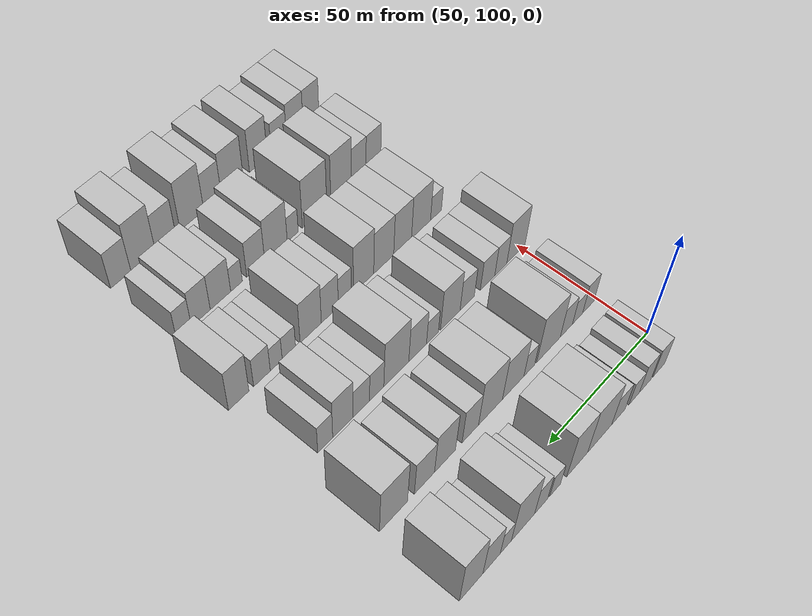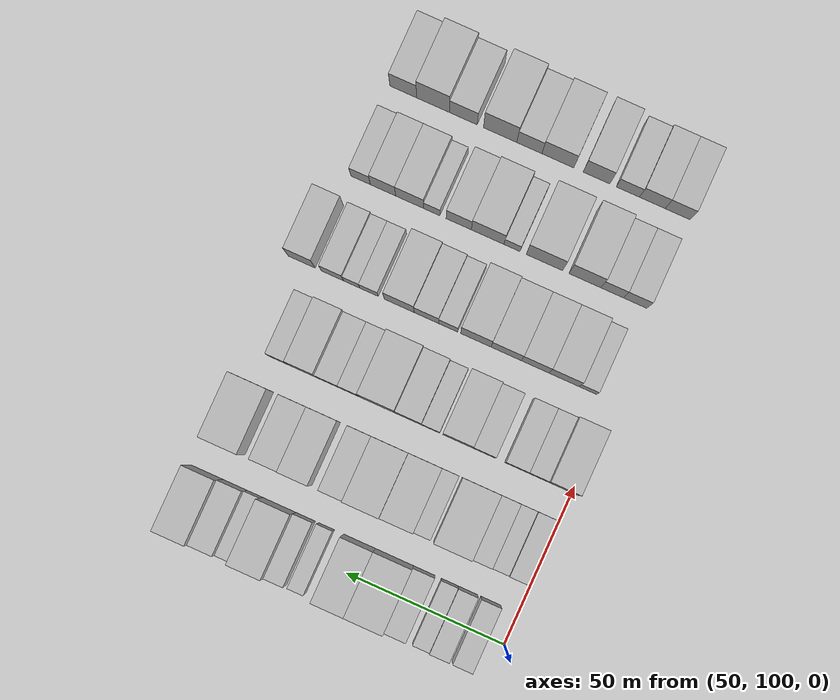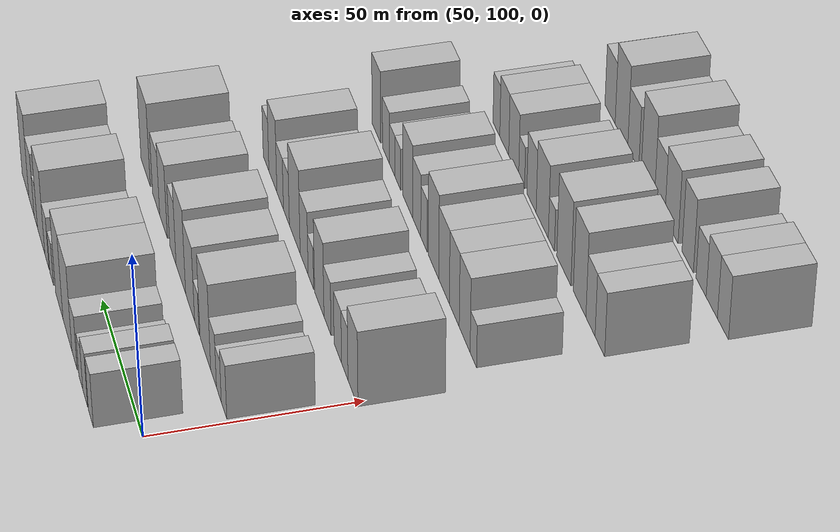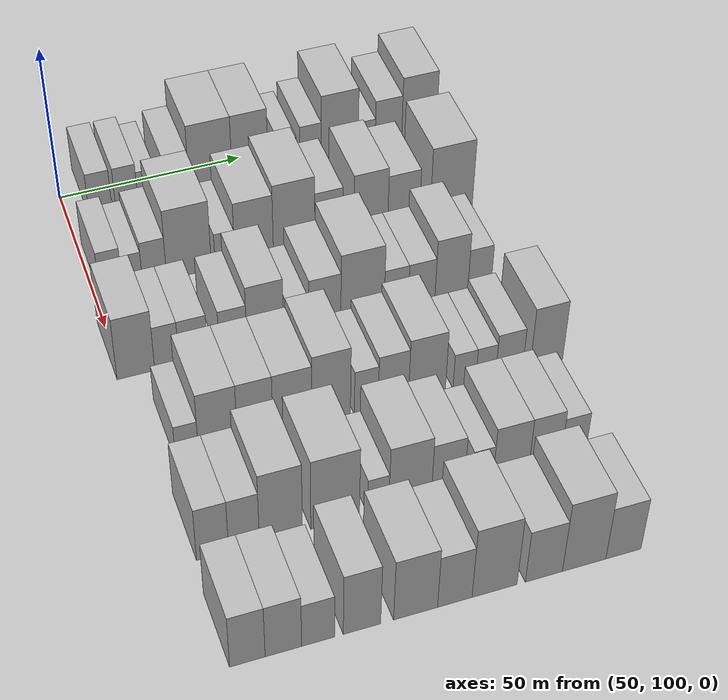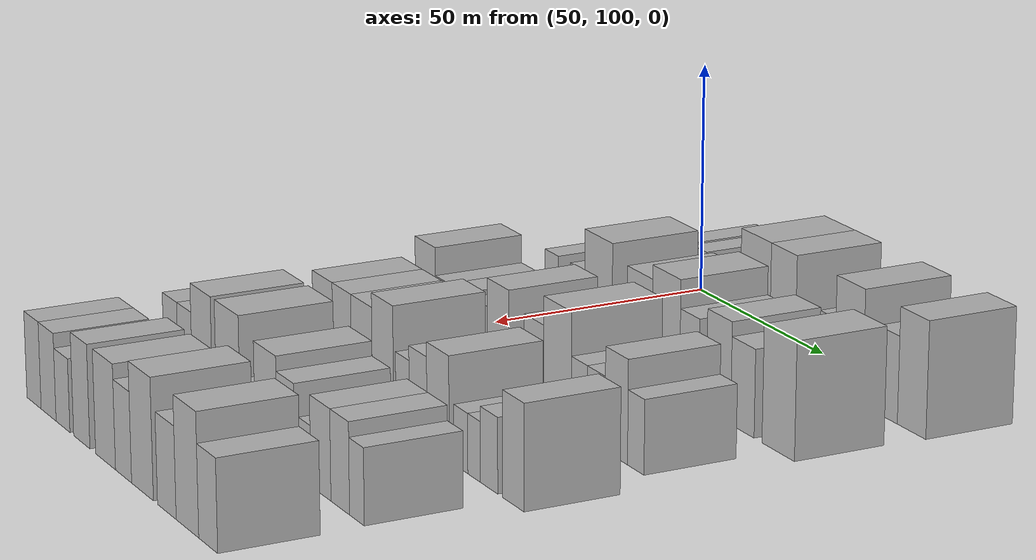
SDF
<sdf version="1.6">
 <world name="default">
  <model name="building_76">
   <static>1</static>
   <pose>50.0000 108.7788 0 0.000000 0.000000 0.000000</pose>
   <link name="link">
    <pose>0 0 7.50 0 0 0</pose>
    <collision name="collision"><geometry><box><size>20.0000 6.2623 15.0000</size></box></geometry></collision>
    <visual name="visual">
     <cast_shadows>0</cast_shadows>
     <geometry><box><size>20.0000 6.2623 15.0000</size></box></geometry>
     <material>
      <script>
       <uri>model://HANNAS_wall/materials/scripts</uri>
       <uri>model://HANNAS_wall/materials/textures</uri>
       <name>vrc/HANNAS_wall</name>
      </script>
     </material>
    </visual>
   </link>
  </model>
  <model name="building_77">
   <static>1</static>
   <pose>50.0000 115.9818 0 0.000000 0.000000 0.000000</pose>
   <link name="link">
    <pose>0 0 7.50 0 0 0</pose>
    <collision name="collision"><geometry><box><size>20.0000 6.1438 15.0000</size></box></geometry></collision>
    <visual name="visual">
     <cast_shadows>0</cast_shadows>
     <geometry><box><size>20.0000 6.1438 15.0000</size></box></geometry>
     <material>
      <script>
       <uri>model://HANNAS_wall/materials/scripts</uri>
       <uri>model://HANNAS_wall/materials/textures</uri>
       <name>vrc/HANNAS_wall</name>
      </script>
     </material>
    </visual>
   </link>
  </model>
  <model name="building_78">
   <static>1</static>
   <pose>50.0000 121.7191 0 0.000000 0.000000 0.000000</pose>
   <link name="link">
    <pose>0 0 6.00 0 0 0</pose>
    <collision name="collision"><geometry><box><size>20.0000 5.3306 12.0000</size></box></geometry></collision>
    <visual name="visual">
     <cast_shadows>0</cast_shadows>
     <geometry><box><size>20.0000 5.3306 12.0000</size></box></geometry>
     <material>
      <script>
       <uri>model://HANNAS_wall/materials/scripts</uri>
       <uri>model://HANNAS_wall/materials/textures</uri>
       <name>vrc/HANNAS_wall</name>
      </script>
     </material>
    </visual>
   </link>
  </model>
  <model name="building_79">
   <static>1</static>
   <pose>50.0000 129.8049 0 0.000000 0.000000 0.000000</pose>
   <link name="link">
    <pose>0 0 7.50 0 0 0</pose>
    <collision name="collision"><geometry><box><size>20.0000 6.8411 15.0000</size></box></geometry></collision>
    <visual name="visual">
     <cast_shadows>0</cast_shadows>
     <geometry><box><size>20.0000 6.8411 15.0000</size></box></geometry>
     <material>
      <script>
       <uri>model://HANNAS_wall/materials/scripts</uri>
       <uri>model://HANNAS_wall/materials/textures</uri>
       <name>vrc/HANNAS_wall</name>
      </script>
     </material>
    </visual>
   </link>
  </model>
  <model name="building_80">
   <static>1</static>
   <pose>50.0000 139.2177 0 0.000000 0.000000 0.000000</pose>
   <link name="link">
    <pose>0 0 12.00 0 0 0</pose>
    <collision name="collision"><geometry><box><size>20.0000 11.9846 24.0000</size></box></geometry></collision>
    <visual name="visual">
     <cast_shadows>0</cast_shadows>
     <geometry><box><size>20.0000 11.9846 24.0000</size></box></geometry>
     <material>
      <script>
       <uri>model://HANNAS_wall/materials/scripts</uri>
       <uri>model://HANNAS_wall/materials/textures</uri>
       <name>vrc/HANNAS_wall</name>
      </script>
     </material>
    </visual>
   </link>
  </model>
  <model name="building_81">
   <static>1</static>
   <pose>50.0000 150.2545 0 0.000000 0.000000 0.000000</pose>
   <link name="link">
    <pose>0 0 12.00 0 0 0</pose>
    <collision name="collision"><geometry><box><size>20.0000 10.0889 24.0000</size></box></geometry></collision>
    <visual name="visual">
     <cast_shadows>0</cast_shadows>
     <geometry><box><size>20.0000 10.0889 24.0000</size></box></geometry>
     <material>
      <script>
       <uri>model://HANNAS_wall/materials/scripts</uri>
       <uri>model://HANNAS_wall/materials/textures</uri>
       <name>vrc/HANNAS_wall</name>
      </script>
     </material>
    </visual>
   </link>
  </model>
  <model name="building_82">
   <static>1</static>
   <pose>50.0000 160.8277 0 0.000000 0.000000 0.000000</pose>
   <link name="link">
    <pose>0 0 6.00 0 0 0</pose>
    <collision name="collision"><geometry><box><size>20.0000 5.0575 12.0000</size></box></geometry></collision>
    <visual name="visual">
     <cast_shadows>0</cast_shadows>
     <geometry><box><size>20.0000 5.0575 12.0000</size></box></geometry>
     <material>
      <script>
       <uri>model://HANNAS_wall/materials/scripts</uri>
       <uri>model://HANNAS_wall/materials/textures</uri>
       <name>vrc/HANNAS_wall</name>
      </script>
     </material>
    </visual>
   </link>
  </model>
  <model name="building_83">
   <static>1</static>
   <pose>50.0000 167.3991 0 0.000000 0.000000 0.000000</pose>
   <link name="link">
    <pose>0 0 7.50 0 0 0</pose>
    <collision name="collision"><geometry><box><size>20.0000 6.0853 15.0000</size></box></geometry></collision>
    <visual name="visual">
     <cast_shadows>0</cast_shadows>
     <geometry><box><size>20.0000 6.0853 15.0000</size></box></geometry>
     <material>
      <script>
       <uri>model://HANNAS_wall/materials/scripts</uri>
       <uri>model://HANNAS_wall/materials/textures</uri>
       <name>vrc/HANNAS_wall</name>
      </script>
     </material>
    </visual>
   </link>
  </model>
  <model name="building_84">
   <static>1</static>
   <pose>50.0000 175.7296 0 0.000000 0.000000 0.000000</pose>
   <link name="link">
    <pose>0 0 12.00 0 0 0</pose>
    <collision name="collision"><geometry><box><size>20.0000 10.5756 24.0000</size></box></geometry></collision>
    <visual name="visual">
     <cast_shadows>0</cast_shadows>
     <geometry><box><size>20.0000 10.5756 24.0000</size></box></geometry>
     <material>
      <script>
       <uri>model://HANNAS_wall/materials/scripts</uri>
       <uri>model://HANNAS_wall/materials/textures</uri>
       <name>vrc/HANNAS_wall</name>
      </script>
     </material>
    </visual>
   </link>
  </model>
  <model name="building_85">
   <static>1</static>
   <pose>50.0000 183.4808 0 0.000000 0.000000 0.000000</pose>
   <link name="link">
    <pose>0 0 6.00 0 0 0</pose>
    <collision name="collision"><geometry><box><size>20.0000 4.9268 12.0000</size></box></geometry></collision>
    <visual name="visual">
     <cast_shadows>0</cast_shadows>
     <geometry><box><size>20.0000 4.9268 12.0000</size></box></geometry>
     <material>
      <script>
       <uri>model://HANNAS_wall/materials/scripts</uri>
       <uri>model://HANNAS_wall/materials/textures</uri>
       <name>vrc/HANNAS_wall</name>
      </script>
     </material>
    </visual>
   </link>
  </model>
  <model name="building_86">
   <static>1</static>
   <pose>50.0000 189.7976 0 0.000000 0.000000 0.000000</pose>
   <link name="link">
    <pose>0 0 9.00 0 0 0</pose>
    <collision name="collision"><geometry><box><size>20.0000 7.7068 18.0000</size></box></geometry></collision>
    <visual name="visual">
     <cast_shadows>0</cast_shadows>
     <geometry><box><size>20.0000 7.7068 18.0000</size></box></geometry>
     <material>
      <script>
       <uri>model://HANNAS_wall/materials/scripts</uri>
       <uri>model://HANNAS_wall/materials/textures</uri>
       <name>vrc/HANNAS_wall</name>
      </script>
     </material>
    </visual>
   </link>
  </model>
  <model name="building_87">
   <static>1</static>
   <pose>50.0000 198.7217 0 0.000000 0.000000 0.000000</pose>
   <link name="link">
    <pose>0 0 12.00 0 0 0</pose>
    <collision name="collision"><geometry><box><size>20.0000 10.1415 24.0000</size></box></geometry></collision>
    <visual name="visual">
     <cast_shadows>0</cast_shadows>
     <geometry><box><size>20.0000 10.1415 24.0000</size></box></geometry>
     <material>
      <script>
       <uri>model://HANNAS_wall/materials/scripts</uri>
       <uri>model://HANNAS_wall/materials/textures</uri>
       <name>vrc/HANNAS_wall</name>
      </script>
     </material>
    </visual>
   </link>
  </model>
  <model name="building_190">
   <static>1</static>
   <pose>79.0000 104.3018 0 0.000000 0.000000 0.000000</pose>
   <link name="link">
    <pose>0 0 7.50 0 0 0</pose>
    <collision name="collision"><geometry><box><size>20.0000 6.0073 15.0000</size></box></geometry></collision>
    <visual name="visual">
     <cast_shadows>0</cast_shadows>
     <geometry><box><size>20.0000 6.0073 15.0000</size></box></geometry>
     <material>
      <script>
       <uri>model://HANNAS_wall/materials/scripts</uri>
       <uri>model://HANNAS_wall/materials/textures</uri>
       <name>vrc/HANNAS_wall</name>
      </script>
     </material>
    </visual>
   </link>
  </model>
  <model name="building_191">
   <static>1</static>
   <pose>79.0000 109.9408 0 0.000000 0.000000 0.000000</pose>
   <link name="link">
    <pose>0 0 6.00 0 0 0</pose>
    <collision name="collision"><geometry><box><size>20.0000 5.2708 12.0000</size></box></geometry></collision>
    <visual name="visual">
     <cast_shadows>0</cast_shadows>
     <geometry><box><size>20.0000 5.2708 12.0000</size></box></geometry>
     <material>
      <script>
       <uri>model://HANNAS_wall/materials/scripts</uri>
       <uri>model://HANNAS_wall/materials/textures</uri>
       <name>vrc/HANNAS_wall</name>
      </script>
     </material>
    </visual>
   </link>
  </model>
  <model name="building_192">
   <static>1</static>
   <pose>79.0000 115.7569 0 0.000000 0.000000 0.000000</pose>
   <link name="link">
    <pose>0 0 7.50 0 0 0</pose>
    <collision name="collision"><geometry><box><size>20.0000 6.3614 15.0000</size></box></geometry></collision>
    <visual name="visual">
     <cast_shadows>0</cast_shadows>
     <geometry><box><size>20.0000 6.3614 15.0000</size></box></geometry>
     <material>
      <script>
       <uri>model://HANNAS_wall/materials/scripts</uri>
       <uri>model://HANNAS_wall/materials/textures</uri>
       <name>vrc/HANNAS_wall</name>
      </script>
     </material>
    </visual>
   </link>
  </model>
  <model name="building_193">
   <static>1</static>
   <pose>79.0000 124.8887 0 0.000000 0.000000 0.000000</pose>
   <link name="link">
    <pose>0 0 12.00 0 0 0</pose>
    <collision name="collision"><geometry><box><size>20.0000 11.9023 24.0000</size></box></geometry></collision>
    <visual name="visual">
     <cast_shadows>0</cast_shadows>
     <geometry><box><size>20.0000 11.9023 24.0000</size></box></geometry>
     <material>
      <script>
       <uri>model://HANNAS_wall/materials/scripts</uri>
       <uri>model://HANNAS_wall/materials/textures</uri>
       <name>vrc/HANNAS_wall</name>
      </script>
     </material>
    </visual>
   </link>
  </model>
  <model name="building_194">
   <static>1</static>
   <pose>79.0000 134.4914 0 0.000000 0.000000 0.000000</pose>
   <link name="link">
    <pose>0 0 6.00 0 0 0</pose>
    <collision name="collision"><geometry><box><size>20.0000 5.3030 12.0000</size></box></geometry></collision>
    <visual name="visual">
     <cast_shadows>0</cast_shadows>
     <geometry><box><size>20.0000 5.3030 12.0000</size></box></geometry>
     <material>
      <script>
       <uri>model://HANNAS_wall/materials/scripts</uri>
       <uri>model://HANNAS_wall/materials/textures</uri>
       <name>vrc/HANNAS_wall</name>
      </script>
     </material>
    </visual>
   </link>
  </model>
  <model name="building_195">
   <static>1</static>
   <pose>79.0000 142.3556 0 0.000000 0.000000 0.000000</pose>
   <link name="link">
    <pose>0 0 10.50 0 0 0</pose>
    <collision name="collision"><geometry><box><size>20.0000 10.4254 21.0000</size></box></geometry></collision>
    <visual name="visual">
     <cast_shadows>0</cast_shadows>
     <geometry><box><size>20.0000 10.4254 21.0000</size></box></geometry>
     <material>
      <script>
       <uri>model://HANNAS_wall/materials/scripts</uri>
       <uri>model://HANNAS_wall/materials/textures</uri>
       <name>vrc/HANNAS_wall</name>
      </script>
     </material>
    </visual>
   </link>
  </model>
  <model name="building_196">
   <static>1</static>
   <pose>79.0000 153.2470 0 0.000000 0.000000 0.000000</pose>
   <link name="link">
    <pose>0 0 12.00 0 0 0</pose>
    <collision name="collision"><geometry><box><size>20.0000 11.3574 24.0000</size></box></geometry></collision>
    <visual name="visual">
     <cast_shadows>0</cast_shadows>
     <geometry><box><size>20.0000 11.3574 24.0000</size></box></geometry>
     <material>
      <script>
       <uri>model://HANNAS_wall/materials/scripts</uri>
       <uri>model://HANNAS_wall/materials/textures</uri>
       <name>vrc/HANNAS_wall</name>
      </script>
     </material>
    </visual>
   </link>
  </model>
  <model name="building_197">
   <static>1</static>
   <pose>79.0000 162.7533 0 0.000000 0.000000 0.000000</pose>
   <link name="link">
    <pose>0 0 9.00 0 0 0</pose>
    <collision name="collision"><geometry><box><size>20.0000 7.6553 18.0000</size></box></geometry></collision>
    <visual name="visual">
     <cast_shadows>0</cast_shadows>
     <geometry><box><size>20.0000 7.6553 18.0000</size></box></geometry>
     <material>
      <script>
       <uri>model://HANNAS_wall/materials/scripts</uri>
       <uri>model://HANNAS_wall/materials/textures</uri>
       <name>vrc/HANNAS_wall</name>
      </script>
     </material>
    </visual>
   </link>
  </model>
  <model name="building_198">
   <static>1</static>
   <pose>79.0000 174.3185 0 0.000000 0.000000 0.000000</pose>
   <link name="link">
    <pose>0 0 10.50 0 0 0</pose>
    <collision name="collision"><geometry><box><size>20.0000 9.4750 21.0000</size></box></geometry></collision>
    <visual name="visual">
     <cast_shadows>0</cast_shadows>
     <geometry><box><size>20.0000 9.4750 21.0000</size></box></geometry>
     <material>
      <script>
       <uri>model://HANNAS_wall/materials/scripts</uri>
       <uri>model://HANNAS_wall/materials/textures</uri>
       <name>vrc/HANNAS_wall</name>
      </script>
     </material>
    </visual>
   </link>
  </model>
  <model name="building_199">
   <static>1</static>
   <pose>79.0000 183.5100 0 0.000000 0.000000 0.000000</pose>
   <link name="link">
    <pose>0 0 9.00 0 0 0</pose>
    <collision name="collision"><geometry><box><size>20.0000 8.9079 18.0000</size></box></geometry></collision>
    <visual name="visual">
     <cast_shadows>0</cast_shadows>
     <geometry><box><size>20.0000 8.9079 18.0000</size></box></geometry>
     <material>
      <script>
       <uri>model://HANNAS_wall/materials/scripts</uri>
       <uri>model://HANNAS_wall/materials/textures</uri>
       <name>vrc/HANNAS_wall</name>
      </script>
     </material>
    </visual>
   </link>
  </model>
  <model name="building_200">
   <static>1</static>
   <pose>79.0000 196.9614 0 0.000000 0.000000 0.000000</pose>
   <link name="link">
    <pose>0 0 12.00 0 0 0</pose>
    <collision name="collision"><geometry><box><size>20.0000 11.9950 24.0000</size></box></geometry></collision>
    <visual name="visual">
     <cast_shadows>0</cast_shadows>
     <geometry><box><size>20.0000 11.9950 24.0000</size></box></geometry>
     <material>
      <script>
       <uri>model://HANNAS_wall/materials/scripts</uri>
       <uri>model://HANNAS_wall/materials/textures</uri>
       <name>vrc/HANNAS_wall</name>
      </script>
     </material>
    </visual>
   </link>
  </model>
  <model name="building_300">
   <static>1</static>
   <pose>108.0000 103.1488 0 0.000000 0.000000 0.000000</pose>
   <link name="link">
    <pose>0 0 10.50 0 0 0</pose>
    <collision name="collision"><geometry><box><size>20.0000 9.5024 21.0000</size></box></geometry></collision>
    <visual name="visual">
     <cast_shadows>0</cast_shadows>
     <geometry><box><size>20.0000 9.5024 21.0000</size></box></geometry>
     <material>
      <script>
       <uri>model://HANNAS_wall/materials/scripts</uri>
       <uri>model://HANNAS_wall/materials/textures</uri>
       <name>vrc/HANNAS_wall</name>
      </script>
     </material>
    </visual>
   </link>
  </model>
  <model name="building_301">
   <static>1</static>
   <pose>108.0000 110.9851 0 0.000000 0.000000 0.000000</pose>
   <link name="link">
    <pose>0 0 7.50 0 0 0</pose>
    <collision name="collision"><geometry><box><size>20.0000 6.1701 15.0000</size></box></geometry></collision>
    <visual name="visual">
     <cast_shadows>0</cast_shadows>
     <geometry><box><size>20.0000 6.1701 15.0000</size></box></geometry>
     <material>
      <script>
       <uri>model://HANNAS_wall/materials/scripts</uri>
       <uri>model://HANNAS_wall/materials/textures</uri>
       <name>vrc/HANNAS_wall</name>
      </script>
     </material>
    </visual>
   </link>
  </model>
  <model name="building_302">
   <static>1</static>
   <pose>108.0000 117.7312 0 0.000000 0.000000 0.000000</pose>
   <link name="link">
    <pose>0 0 7.50 0 0 0</pose>
    <collision name="collision"><geometry><box><size>20.0000 7.3222 15.0000</size></box></geometry></collision>
    <visual name="visual">
     <cast_shadows>0</cast_shadows>
     <geometry><box><size>20.0000 7.3222 15.0000</size></box></geometry>
     <material>
      <script>
       <uri>model://HANNAS_wall/materials/scripts</uri>
       <uri>model://HANNAS_wall/materials/textures</uri>
       <name>vrc/HANNAS_wall</name>
      </script>
     </material>
    </visual>
   </link>
  </model>
  <model name="building_303">
   <static>1</static>
   <pose>108.0000 127.9344 0 0.000000 0.000000 0.000000</pose>
   <link name="link">
    <pose>0 0 7.50 0 0 0</pose>
    <collision name="collision"><geometry><box><size>20.0000 7.0842 15.0000</size></box></geometry></collision>
    <visual name="visual">
     <cast_shadows>0</cast_shadows>
     <geometry><box><size>20.0000 7.0842 15.0000</size></box></geometry>
     <material>
      <script>
       <uri>model://HANNAS_wall/materials/scripts</uri>
       <uri>model://HANNAS_wall/materials/textures</uri>
       <name>vrc/HANNAS_wall</name>
      </script>
     </material>
    </visual>
   </link>
  </model>
  <model name="building_304">
   <static>1</static>
   <pose>108.0000 136.2412 0 0.000000 0.000000 0.000000</pose>
   <link name="link">
    <pose>0 0 10.50 0 0 0</pose>
    <collision name="collision"><geometry><box><size>20.0000 9.5295 21.0000</size></box></geometry></collision>
    <visual name="visual">
     <cast_shadows>0</cast_shadows>
     <geometry><box><size>20.0000 9.5295 21.0000</size></box></geometry>
     <material>
      <script>
       <uri>model://HANNAS_wall/materials/scripts</uri>
       <uri>model://HANNAS_wall/materials/textures</uri>
       <name>vrc/HANNAS_wall</name>
      </script>
     </material>
    </visual>
   </link>
  </model>
  <model name="building_305">
   <static>1</static>
   <pose>108.0000 144.8470 0 0.000000 0.000000 0.000000</pose>
   <link name="link">
    <pose>0 0 6.00 0 0 0</pose>
    <collision name="collision"><geometry><box><size>20.0000 5.6822 12.0000</size></box></geometry></collision>
    <visual name="visual">
     <cast_shadows>0</cast_shadows>
     <geometry><box><size>20.0000 5.6822 12.0000</size></box></geometry>
     <material>
      <script>
       <uri>model://HANNAS_wall/materials/scripts</uri>
       <uri>model://HANNAS_wall/materials/textures</uri>
       <name>vrc/HANNAS_wall</name>
      </script>
     </material>
    </visual>
   </link>
  </model>
  <model name="building_306">
   <static>1</static>
   <pose>108.0000 151.8438 0 0.000000 0.000000 0.000000</pose>
   <link name="link">
    <pose>0 0 9.00 0 0 0</pose>
    <collision name="collision"><geometry><box><size>20.0000 8.3113 18.0000</size></box></geometry></collision>
    <visual name="visual">
     <cast_shadows>0</cast_shadows>
     <geometry><box><size>20.0000 8.3113 18.0000</size></box></geometry>
     <material>
      <script>
       <uri>model://HANNAS_wall/materials/scripts</uri>
       <uri>model://HANNAS_wall/materials/textures</uri>
       <name>vrc/HANNAS_wall</name>
      </script>
     </material>
    </visual>
   </link>
  </model>
  <model name="building_307">
   <static>1</static>
   <pose>108.0000 161.7494 0 0.000000 0.000000 0.000000</pose>
   <link name="link">
    <pose>0 0 12.00 0 0 0</pose>
    <collision name="collision"><geometry><box><size>20.0000 11.4998 24.0000</size></box></geometry></collision>
    <visual name="visual">
     <cast_shadows>0</cast_shadows>
     <geometry><box><size>20.0000 11.4998 24.0000</size></box></geometry>
     <material>
      <script>
       <uri>model://HANNAS_wall/materials/scripts</uri>
       <uri>model://HANNAS_wall/materials/textures</uri>
       <name>vrc/HANNAS_wall</name>
      </script>
     </material>
    </visual>
   </link>
  </model>
  <model name="building_308">
   <static>1</static>
   <pose>108.0000 170.7254 0 0.000000 0.000000 0.000000</pose>
   <link name="link">
    <pose>0 0 7.50 0 0 0</pose>
    <collision name="collision"><geometry><box><size>20.0000 6.4523 15.0000</size></box></geometry></collision>
    <visual name="visual">
     <cast_shadows>0</cast_shadows>
     <geometry><box><size>20.0000 6.4523 15.0000</size></box></geometry>
     <material>
      <script>
       <uri>model://HANNAS_wall/materials/scripts</uri>
       <uri>model://HANNAS_wall/materials/textures</uri>
       <name>vrc/HANNAS_wall</name>
      </script>
     </material>
    </visual>
   </link>
  </model>
  <model name="building_309">
   <static>1</static>
   <pose>108.0000 177.5648 0 0.000000 0.000000 0.000000</pose>
   <link name="link">
    <pose>0 0 7.50 0 0 0</pose>
    <collision name="collision"><geometry><box><size>20.0000 7.2263 15.0000</size></box></geometry></collision>
    <visual name="visual">
     <cast_shadows>0</cast_shadows>
     <geometry><box><size>20.0000 7.2263 15.0000</size></box></geometry>
     <material>
      <script>
       <uri>model://HANNAS_wall/materials/scripts</uri>
       <uri>model://HANNAS_wall/materials/textures</uri>
       <name>vrc/HANNAS_wall</name>
      </script>
     </material>
    </visual>
   </link>
  </model>
  <model name="building_310">
   <static>1</static>
   <pose>108.0000 185.6355 0 0.000000 0.000000 0.000000</pose>
   <link name="link">
    <pose>0 0 10.50 0 0 0</pose>
    <collision name="collision"><geometry><box><size>20.0000 8.9151 21.0000</size></box></geometry></collision>
    <visual name="visual">
     <cast_shadows>0</cast_shadows>
     <geometry><box><size>20.0000 8.9151 21.0000</size></box></geometry>
     <material>
      <script>
       <uri>model://HANNAS_wall/materials/scripts</uri>
       <uri>model://HANNAS_wall/materials/textures</uri>
       <name>vrc/HANNAS_wall</name>
      </script>
     </material>
    </visual>
   </link>
  </model>
  <model name="building_311">
   <static>1</static>
   <pose>108.0000 193.2934 0 0.000000 0.000000 0.000000</pose>
   <link name="link">
    <pose>0 0 7.50 0 0 0</pose>
    <collision name="collision"><geometry><box><size>20.0000 6.4007 15.0000</size></box></geometry></collision>
    <visual name="visual">
     <cast_shadows>0</cast_shadows>
     <geometry><box><size>20.0000 6.4007 15.0000</size></box></geometry>
     <material>
      <script>
       <uri>model://HANNAS_wall/materials/scripts</uri>
       <uri>model://HANNAS_wall/materials/textures</uri>
       <name>vrc/HANNAS_wall</name>
      </script>
     </material>
    </visual>
   </link>
  </model>
  <model name="building_410">
   <static>1</static>
   <pose>137.0000 107.9005 0 0.000000 0.000000 0.000000</pose>
   <link name="link">
    <pose>0 0 6.00 0 0 0</pose>
    <collision name="collision"><geometry><box><size>20.0000 5.5948 12.0000</size></box></geometry></collision>
    <visual name="visual">
     <cast_shadows>0</cast_shadows>
     <geometry><box><size>20.0000 5.5948 12.0000</size></box></geometry>
     <material>
      <script>
       <uri>model://HANNAS_wall/materials/scripts</uri>
       <uri>model://HANNAS_wall/materials/textures</uri>
       <name>vrc/HANNAS_wall</name>
      </script>
     </material>
    </visual>
   </link>
  </model>
  <model name="building_411">
   <static>1</static>
   <pose>137.0000 115.4713 0 0.000000 0.000000 0.000000</pose>
   <link name="link">
    <pose>0 0 10.50 0 0 0</pose>
    <collision name="collision"><geometry><box><size>20.0000 9.5469 21.0000</size></box></geometry></collision>
    <visual name="visual">
     <cast_shadows>0</cast_shadows>
     <geometry><box><size>20.0000 9.5469 21.0000</size></box></geometry>
     <material>
      <script>
       <uri>model://HANNAS_wall/materials/scripts</uri>
       <uri>model://HANNAS_wall/materials/textures</uri>
       <name>vrc/HANNAS_wall</name>
      </script>
     </material>
    </visual>
   </link>
  </model>
  <model name="building_412">
   <static>1</static>
   <pose>137.0000 124.6443 0 0.000000 0.000000 0.000000</pose>
   <link name="link">
    <pose>0 0 10.50 0 0 0</pose>
    <collision name="collision"><geometry><box><size>20.0000 8.7990 21.0000</size></box></geometry></collision>
    <visual name="visual">
     <cast_shadows>0</cast_shadows>
     <geometry><box><size>20.0000 8.7990 21.0000</size></box></geometry>
     <material>
      <script>
       <uri>model://HANNAS_wall/materials/scripts</uri>
       <uri>model://HANNAS_wall/materials/textures</uri>
       <name>vrc/HANNAS_wall</name>
      </script>
     </material>
    </visual>
   </link>
  </model>
  <model name="building_413">
   <static>1</static>
   <pose>137.0000 133.8896 0 0.000000 0.000000 0.000000</pose>
   <link name="link">
    <pose>0 0 10.50 0 0 0</pose>
    <collision name="collision"><geometry><box><size>20.0000 9.6916 21.0000</size></box></geometry></collision>
    <visual name="visual">
     <cast_shadows>0</cast_shadows>
     <geometry><box><size>20.0000 9.6916 21.0000</size></box></geometry>
     <material>
      <script>
       <uri>model://HANNAS_wall/materials/scripts</uri>
       <uri>model://HANNAS_wall/materials/textures</uri>
       <name>vrc/HANNAS_wall</name>
      </script>
     </material>
    </visual>
   </link>
  </model>
  <model name="building_414">
   <static>1</static>
   <pose>137.0000 143.5644 0 0.000000 0.000000 0.000000</pose>
   <link name="link">
    <pose>0 0 12.00 0 0 0</pose>
    <collision name="collision"><geometry><box><size>20.0000 9.6579 24.0000</size></box></geometry></collision>
    <visual name="visual">
     <cast_shadows>0</cast_shadows>
     <geometry><box><size>20.0000 9.6579 24.0000</size></box></geometry>
     <material>
      <script>
       <uri>model://HANNAS_wall/materials/scripts</uri>
       <uri>model://HANNAS_wall/materials/textures</uri>
       <name>vrc/HANNAS_wall</name>
      </script>
     </material>
    </visual>
   </link>
  </model>
  <model name="building_415">
   <static>1</static>
   <pose>137.0000 152.4075 0 0.000000 0.000000 0.000000</pose>
   <link name="link">
    <pose>0 0 7.50 0 0 0</pose>
    <collision name="collision"><geometry><box><size>20.0000 6.0285 15.0000</size></box></geometry></collision>
    <visual name="visual">
     <cast_shadows>0</cast_shadows>
     <geometry><box><size>20.0000 6.0285 15.0000</size></box></geometry>
     <material>
      <script>
       <uri>model://HANNAS_wall/materials/scripts</uri>
       <uri>model://HANNAS_wall/materials/textures</uri>
       <name>vrc/HANNAS_wall</name>
      </script>
     </material>
    </visual>
   </link>
  </model>
  <model name="building_416">
   <static>1</static>
   <pose>137.0000 159.3049 0 0.000000 0.000000 0.000000</pose>
   <link name="link">
    <pose>0 0 9.00 0 0 0</pose>
    <collision name="collision"><geometry><box><size>20.0000 7.7663 18.0000</size></box></geometry></collision>
    <visual name="visual">
     <cast_shadows>0</cast_shadows>
     <geometry><box><size>20.0000 7.7663 18.0000</size></box></geometry>
     <material>
      <script>
       <uri>model://HANNAS_wall/materials/scripts</uri>
       <uri>model://HANNAS_wall/materials/textures</uri>
       <name>vrc/HANNAS_wall</name>
      </script>
     </material>
    </visual>
   </link>
  </model>
  <model name="building_417">
   <static>1</static>
   <pose>137.0000 167.9620 0 0.000000 0.000000 0.000000</pose>
   <link name="link">
    <pose>0 0 10.50 0 0 0</pose>
    <collision name="collision"><geometry><box><size>20.0000 9.5480 21.0000</size></box></geometry></collision>
    <visual name="visual">
     <cast_shadows>0</cast_shadows>
     <geometry><box><size>20.0000 9.5480 21.0000</size></box></geometry>
     <material>
      <script>
       <uri>model://HANNAS_wall/materials/scripts</uri>
       <uri>model://HANNAS_wall/materials/textures</uri>
       <name>vrc/HANNAS_wall</name>
      </script>
     </material>
    </visual>
   </link>
  </model>
  <model name="building_418">
   <static>1</static>
   <pose>137.0000 177.6830 0 0.000000 0.000000 0.000000</pose>
   <link name="link">
    <pose>0 0 6.00 0 0 0</pose>
    <collision name="collision"><geometry><box><size>20.0000 5.8939 12.0000</size></box></geometry></collision>
    <visual name="visual">
     <cast_shadows>0</cast_shadows>
     <geometry><box><size>20.0000 5.8939 12.0000</size></box></geometry>
     <material>
      <script>
       <uri>model://HANNAS_wall/materials/scripts</uri>
       <uri>model://HANNAS_wall/materials/textures</uri>
       <name>vrc/HANNAS_wall</name>
      </script>
     </material>
    </visual>
   </link>
  </model>
  <model name="building_419">
   <static>1</static>
   <pose>137.0000 183.2284 0 0.000000 0.000000 0.000000</pose>
   <link name="link">
    <pose>0 0 6.00 0 0 0</pose>
    <collision name="collision"><geometry><box><size>20.0000 5.1969 12.0000</size></box></geometry></collision>
    <visual name="visual">
     <cast_shadows>0</cast_shadows>
     <geometry><box><size>20.0000 5.1969 12.0000</size></box></geometry>
     <material>
      <script>
       <uri>model://HANNAS_wall/materials/scripts</uri>
       <uri>model://HANNAS_wall/materials/textures</uri>
       <name>vrc/HANNAS_wall</name>
      </script>
     </material>
    </visual>
   </link>
  </model>
  <model name="building_420">
   <static>1</static>
   <pose>137.0000 189.3967 0 0.000000 0.000000 0.000000</pose>
   <link name="link">
    <pose>0 0 7.50 0 0 0</pose>
    <collision name="collision"><geometry><box><size>20.0000 7.1397 15.0000</size></box></geometry></collision>
    <visual name="visual">
     <cast_shadows>0</cast_shadows>
     <geometry><box><size>20.0000 7.1397 15.0000</size></box></geometry>
     <material>
      <script>
       <uri>model://HANNAS_wall/materials/scripts</uri>
       <uri>model://HANNAS_wall/materials/textures</uri>
       <name>vrc/HANNAS_wall</name>
      </script>
     </material>
    </visual>
   </link>
  </model>
  <model name="building_421">
   <static>1</static>
   <pose>137.0000 199.2836 0 0.000000 0.000000 0.000000</pose>
   <link name="link">
    <pose>0 0 10.50 0 0 0</pose>
    <collision name="collision"><geometry><box><size>20.0000 8.6340 21.0000</size></box></geometry></collision>
    <visual name="visual">
     <cast_shadows>0</cast_shadows>
     <geometry><box><size>20.0000 8.6340 21.0000</size></box></geometry>
     <material>
      <script>
       <uri>model://HANNAS_wall/materials/scripts</uri>
       <uri>model://HANNAS_wall/materials/textures</uri>
       <name>vrc/HANNAS_wall</name>
      </script>
     </material>
    </visual>
   </link>
  </model>
  <model name="building_527">
   <static>1</static>
   <pose>166.0000 105.6046 0 0.000000 0.000000 0.000000</pose>
   <link name="link">
    <pose>0 0 9.00 0 0 0</pose>
    <collision name="collision"><geometry><box><size>20.0000 7.5010 18.0000</size></box></geometry></collision>
    <visual name="visual">
     <cast_shadows>0</cast_shadows>
     <geometry><box><size>20.0000 7.5010 18.0000</size></box></geometry>
     <material>
      <script>
       <uri>model://HANNAS_wall/materials/scripts</uri>
       <uri>model://HANNAS_wall/materials/textures</uri>
       <name>vrc/HANNAS_wall</name>
      </script>
     </material>
    </visual>
   </link>
  </model>
  <model name="building_528">
   <static>1</static>
   <pose>166.0000 112.9799 0 0.000000 0.000000 0.000000</pose>
   <link name="link">
    <pose>0 0 9.00 0 0 0</pose>
    <collision name="collision"><geometry><box><size>20.0000 7.2495 18.0000</size></box></geometry></collision>
    <visual name="visual">
     <cast_shadows>0</cast_shadows>
     <geometry><box><size>20.0000 7.2495 18.0000</size></box></geometry>
     <material>
      <script>
       <uri>model://HANNAS_wall/materials/scripts</uri>
       <uri>model://HANNAS_wall/materials/textures</uri>
       <name>vrc/HANNAS_wall</name>
      </script>
     </material>
    </visual>
   </link>
  </model>
  <model name="building_529">
   <static>1</static>
   <pose>166.0000 121.6888 0 0.000000 0.000000 0.000000</pose>
   <link name="link">
    <pose>0 0 12.00 0 0 0</pose>
    <collision name="collision"><geometry><box><size>20.0000 10.1683 24.0000</size></box></geometry></collision>
    <visual name="visual">
     <cast_shadows>0</cast_shadows>
     <geometry><box><size>20.0000 10.1683 24.0000</size></box></geometry>
     <material>
      <script>
       <uri>model://HANNAS_wall/materials/scripts</uri>
       <uri>model://HANNAS_wall/materials/textures</uri>
       <name>vrc/HANNAS_wall</name>
      </script>
     </material>
    </visual>
   </link>
  </model>
  <model name="building_530">
   <static>1</static>
   <pose>166.0000 134.6011 0 0.000000 0.000000 0.000000</pose>
   <link name="link">
    <pose>0 0 12.00 0 0 0</pose>
    <collision name="collision"><geometry><box><size>20.0000 11.6562 24.0000</size></box></geometry></collision>
    <visual name="visual">
     <cast_shadows>0</cast_shadows>
     <geometry><box><size>20.0000 11.6562 24.0000</size></box></geometry>
     <material>
      <script>
       <uri>model://HANNAS_wall/materials/scripts</uri>
       <uri>model://HANNAS_wall/materials/textures</uri>
       <name>vrc/HANNAS_wall</name>
      </script>
     </material>
    </visual>
   </link>
  </model>
  <model name="building_531">
   <static>1</static>
   <pose>166.0000 144.9980 0 0.000000 0.000000 0.000000</pose>
   <link name="link">
    <pose>0 0 6.00 0 0 0</pose>
    <collision name="collision"><geometry><box><size>20.0000 5.1377 12.0000</size></box></geometry></collision>
    <visual name="visual">
     <cast_shadows>0</cast_shadows>
     <geometry><box><size>20.0000 5.1377 12.0000</size></box></geometry>
     <material>
      <script>
       <uri>model://HANNAS_wall/materials/scripts</uri>
       <uri>model://HANNAS_wall/materials/textures</uri>
       <name>vrc/HANNAS_wall</name>
      </script>
     </material>
    </visual>
   </link>
  </model>
  <model name="building_532">
   <static>1</static>
   <pose>166.0000 152.7796 0 0.000000 0.000000 0.000000</pose>
   <link name="link">
    <pose>0 0 10.50 0 0 0</pose>
    <collision name="collision"><geometry><box><size>20.0000 10.4254 21.0000</size></box></geometry></collision>
    <visual name="visual">
     <cast_shadows>0</cast_shadows>
     <geometry><box><size>20.0000 10.4254 21.0000</size></box></geometry>
     <material>
      <script>
       <uri>model://HANNAS_wall/materials/scripts</uri>
       <uri>model://HANNAS_wall/materials/textures</uri>
       <name>vrc/HANNAS_wall</name>
      </script>
     </material>
    </visual>
   </link>
  </model>
  <model name="building_533">
   <static>1</static>
   <pose>166.0000 162.0465 0 0.000000 0.000000 0.000000</pose>
   <link name="link">
    <pose>0 0 9.00 0 0 0</pose>
    <collision name="collision"><geometry><box><size>20.0000 8.1084 18.0000</size></box></geometry></collision>
    <visual name="visual">
     <cast_shadows>0</cast_shadows>
     <geometry><box><size>20.0000 8.1084 18.0000</size></box></geometry>
     <material>
      <script>
       <uri>model://HANNAS_wall/materials/scripts</uri>
       <uri>model://HANNAS_wall/materials/textures</uri>
       <name>vrc/HANNAS_wall</name>
      </script>
     </material>
    </visual>
   </link>
  </model>
  <model name="building_534">
   <static>1</static>
   <pose>166.0000 170.6956 0 0.000000 0.000000 0.000000</pose>
   <link name="link">
    <pose>0 0 6.00 0 0 0</pose>
    <collision name="collision"><geometry><box><size>20.0000 5.1897 12.0000</size></box></geometry></collision>
    <visual name="visual">
     <cast_shadows>0</cast_shadows>
     <geometry><box><size>20.0000 5.1897 12.0000</size></box></geometry>
     <material>
      <script>
       <uri>model://HANNAS_wall/materials/scripts</uri>
       <uri>model://HANNAS_wall/materials/textures</uri>
       <name>vrc/HANNAS_wall</name>
      </script>
     </material>
    </visual>
   </link>
  </model>
  <model name="building_535">
   <static>1</static>
   <pose>166.0000 177.7765 0 0.000000 0.000000 0.000000</pose>
   <link name="link">
    <pose>0 0 9.00 0 0 0</pose>
    <collision name="collision"><geometry><box><size>20.0000 8.9721 18.0000</size></box></geometry></collision>
    <visual name="visual">
     <cast_shadows>0</cast_shadows>
     <geometry><box><size>20.0000 8.9721 18.0000</size></box></geometry>
     <material>
      <script>
       <uri>model://HANNAS_wall/materials/scripts</uri>
       <uri>model://HANNAS_wall/materials/textures</uri>
       <name>vrc/HANNAS_wall</name>
      </script>
     </material>
    </visual>
   </link>
  </model>
  <model name="building_536">
   <static>1</static>
   <pose>166.0000 186.3265 0 0.000000 0.000000 0.000000</pose>
   <link name="link">
    <pose>0 0 9.00 0 0 0</pose>
    <collision name="collision"><geometry><box><size>20.0000 8.1279 18.0000</size></box></geometry></collision>
    <visual name="visual">
     <cast_shadows>0</cast_shadows>
     <geometry><box><size>20.0000 8.1279 18.0000</size></box></geometry>
     <material>
      <script>
       <uri>model://HANNAS_wall/materials/scripts</uri>
       <uri>model://HANNAS_wall/materials/textures</uri>
       <name>vrc/HANNAS_wall</name>
      </script>
     </material>
    </visual>
   </link>
  </model>
  <model name="building_537">
   <static>1</static>
   <pose>166.0000 193.5418 0 0.000000 0.000000 0.000000</pose>
   <link name="link">
    <pose>0 0 7.50 0 0 0</pose>
    <collision name="collision"><geometry><box><size>20.0000 6.3027 15.0000</size></box></geometry></collision>
    <visual name="visual">
     <cast_shadows>0</cast_shadows>
     <geometry><box><size>20.0000 6.3027 15.0000</size></box></geometry>
     <material>
      <script>
       <uri>model://HANNAS_wall/materials/scripts</uri>
       <uri>model://HANNAS_wall/materials/textures</uri>
       <name>vrc/HANNAS_wall</name>
      </script>
     </material>
    </visual>
   </link>
  </model>
  <model name="building_641">
   <static>1</static>
   <pose>195.0000 104.8254 0 0.000000 0.000000 0.000000</pose>
   <link name="link">
    <pose>0 0 9.00 0 0 0</pose>
    <collision name="collision"><geometry><box><size>20.0000 7.9612 18.0000</size></box></geometry></collision>
    <visual name="visual">
     <cast_shadows>0</cast_shadows>
     <geometry><box><size>20.0000 7.9612 18.0000</size></box></geometry>
     <material>
      <script>
       <uri>model://HANNAS_wall/materials/scripts</uri>
       <uri>model://HANNAS_wall/materials/textures</uri>
       <name>vrc/HANNAS_wall</name>
      </script>
     </material>
    </visual>
   </link>
  </model>
  <model name="building_642">
   <static>1</static>
   <pose>195.0000 112.9126 0 0.000000 0.000000 0.000000</pose>
   <link name="link">
    <pose>0 0 9.00 0 0 0</pose>
    <collision name="collision"><geometry><box><size>20.0000 8.2132 18.0000</size></box></geometry></collision>
    <visual name="visual">
     <cast_shadows>0</cast_shadows>
     <geometry><box><size>20.0000 8.2132 18.0000</size></box></geometry>
     <material>
      <script>
       <uri>model://HANNAS_wall/materials/scripts</uri>
       <uri>model://HANNAS_wall/materials/textures</uri>
       <name>vrc/HANNAS_wall</name>
      </script>
     </material>
    </visual>
   </link>
  </model>
  <model name="building_643">
   <static>1</static>
   <pose>195.0000 120.7636 0 0.000000 0.000000 0.000000</pose>
   <link name="link">
    <pose>0 0 7.50 0 0 0</pose>
    <collision name="collision"><geometry><box><size>20.0000 7.4888 15.0000</size></box></geometry></collision>
    <visual name="visual">
     <cast_shadows>0</cast_shadows>
     <geometry><box><size>20.0000 7.4888 15.0000</size></box></geometry>
     <material>
      <script>
       <uri>model://HANNAS_wall/materials/scripts</uri>
       <uri>model://HANNAS_wall/materials/textures</uri>
       <name>vrc/HANNAS_wall</name>
      </script>
     </material>
    </visual>
   </link>
  </model>
  <model name="building_644">
   <static>1</static>
   <pose>195.0000 130.8001 0 0.000000 0.000000 0.000000</pose>
   <link name="link">
    <pose>0 0 10.50 0 0 0</pose>
    <collision name="collision"><geometry><box><size>20.0000 8.5842 21.0000</size></box></geometry></collision>
    <visual name="visual">
     <cast_shadows>0</cast_shadows>
     <geometry><box><size>20.0000 8.5842 21.0000</size></box></geometry>
     <material>
      <script>
       <uri>model://HANNAS_wall/materials/scripts</uri>
       <uri>model://HANNAS_wall/materials/textures</uri>
       <name>vrc/HANNAS_wall</name>
      </script>
     </material>
    </visual>
   </link>
  </model>
  <model name="building_645">
   <static>1</static>
   <pose>195.0000 143.2116 0 0.000000 0.000000 0.000000</pose>
   <link name="link">
    <pose>0 0 10.50 0 0 0</pose>
    <collision name="collision"><geometry><box><size>20.0000 10.2389 21.0000</size></box></geometry></collision>
    <visual name="visual">
     <cast_shadows>0</cast_shadows>
     <geometry><box><size>20.0000 10.2389 21.0000</size></box></geometry>
     <material>
      <script>
       <uri>model://HANNAS_wall/materials/scripts</uri>
       <uri>model://HANNAS_wall/materials/textures</uri>
       <name>vrc/HANNAS_wall</name>
      </script>
     </material>
    </visual>
   </link>
  </model>
  <model name="building_646">
   <static>1</static>
   <pose>195.0000 152.3848 0 0.000000 0.000000 0.000000</pose>
   <link name="link">
    <pose>0 0 9.00 0 0 0</pose>
    <collision name="collision"><geometry><box><size>20.0000 8.1076 18.0000</size></box></geometry></collision>
    <visual name="visual">
     <cast_shadows>0</cast_shadows>
     <geometry><box><size>20.0000 8.1076 18.0000</size></box></geometry>
     <material>
      <script>
       <uri>model://HANNAS_wall/materials/scripts</uri>
       <uri>model://HANNAS_wall/materials/textures</uri>
       <name>vrc/HANNAS_wall</name>
      </script>
     </material>
    </visual>
   </link>
  </model>
  <model name="building_647">
   <static>1</static>
   <pose>195.0000 161.7930 0 0.000000 0.000000 0.000000</pose>
   <link name="link">
    <pose>0 0 12.00 0 0 0</pose>
    <collision name="collision"><geometry><box><size>20.0000 10.7086 24.0000</size></box></geometry></collision>
    <visual name="visual">
     <cast_shadows>0</cast_shadows>
     <geometry><box><size>20.0000 10.7086 24.0000</size></box></geometry>
     <material>
      <script>
       <uri>model://HANNAS_wall/materials/scripts</uri>
       <uri>model://HANNAS_wall/materials/textures</uri>
       <name>vrc/HANNAS_wall</name>
      </script>
     </material>
    </visual>
   </link>
  </model>
  <model name="building_648">
   <static>1</static>
   <pose>195.0000 173.6122 0 0.000000 0.000000 0.000000</pose>
   <link name="link">
    <pose>0 0 9.00 0 0 0</pose>
    <collision name="collision"><geometry><box><size>20.0000 8.9298 18.0000</size></box></geometry></collision>
    <visual name="visual">
     <cast_shadows>0</cast_shadows>
     <geometry><box><size>20.0000 8.9298 18.0000</size></box></geometry>
     <material>
      <script>
       <uri>model://HANNAS_wall/materials/scripts</uri>
       <uri>model://HANNAS_wall/materials/textures</uri>
       <name>vrc/HANNAS_wall</name>
      </script>
     </material>
    </visual>
   </link>
  </model>
  <model name="building_649">
   <static>1</static>
   <pose>195.0000 183.3555 0 0.000000 0.000000 0.000000</pose>
   <link name="link">
    <pose>0 0 12.00 0 0 0</pose>
    <collision name="collision"><geometry><box><size>20.0000 10.5568 24.0000</size></box></geometry></collision>
    <visual name="visual">
     <cast_shadows>0</cast_shadows>
     <geometry><box><size>20.0000 10.5568 24.0000</size></box></geometry>
     <material>
      <script>
       <uri>model://HANNAS_wall/materials/scripts</uri>
       <uri>model://HANNAS_wall/materials/textures</uri>
       <name>vrc/HANNAS_wall</name>
      </script>
     </material>
    </visual>
   </link>
  </model>
  <model name="building_650">
   <static>1</static>
   <pose>195.0000 192.9541 0 0.000000 0.000000 0.000000</pose>
   <link name="link">
    <pose>0 0 9.00 0 0 0</pose>
    <collision name="collision"><geometry><box><size>20.0000 8.6404 18.0000</size></box></geometry></collision>
    <visual name="visual">
     <cast_shadows>0</cast_shadows>
     <geometry><box><size>20.0000 8.6404 18.0000</size></box></geometry>
     <material>
      <script>
       <uri>model://HANNAS_wall/materials/scripts</uri>
       <uri>model://HANNAS_wall/materials/textures</uri>
       <name>vrc/HANNAS_wall</name>
      </script>
     </material>
    </visual>
   </link>
  </model>
 </world>
</sdf>
